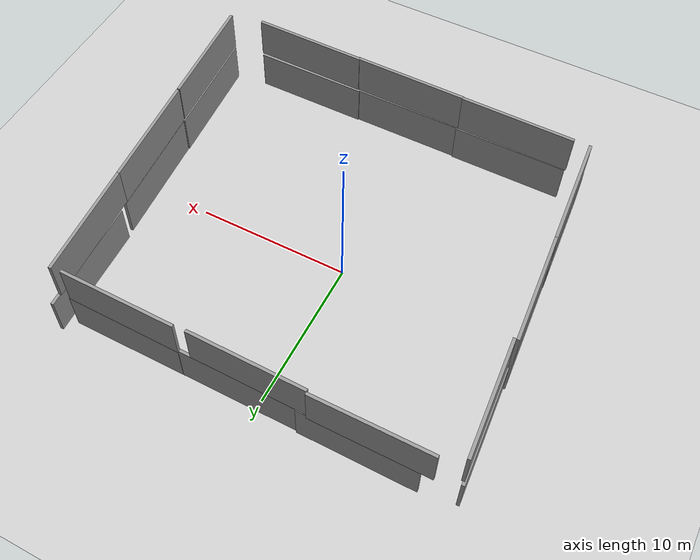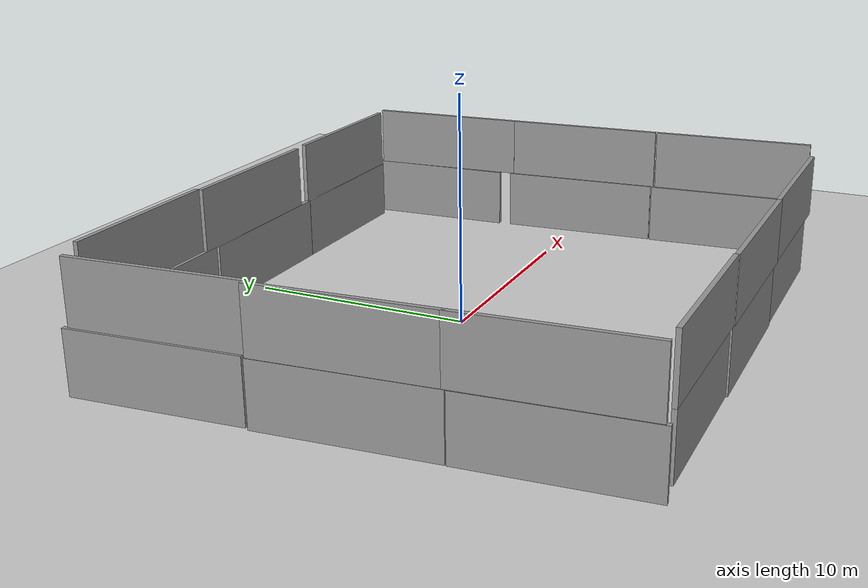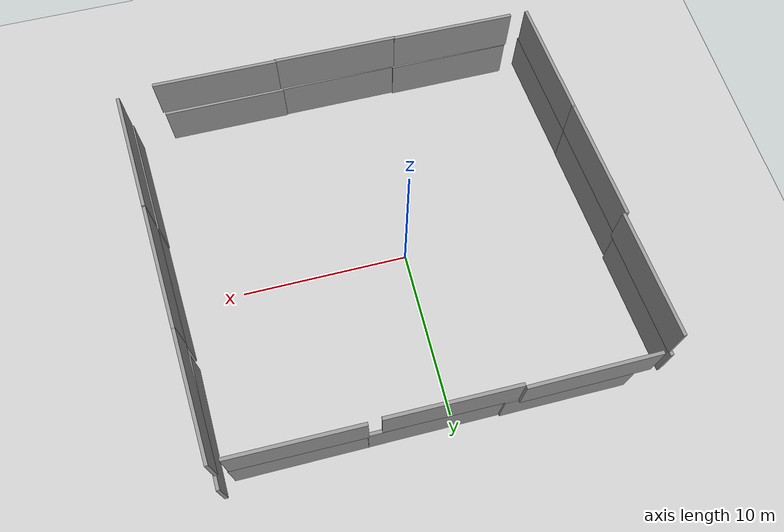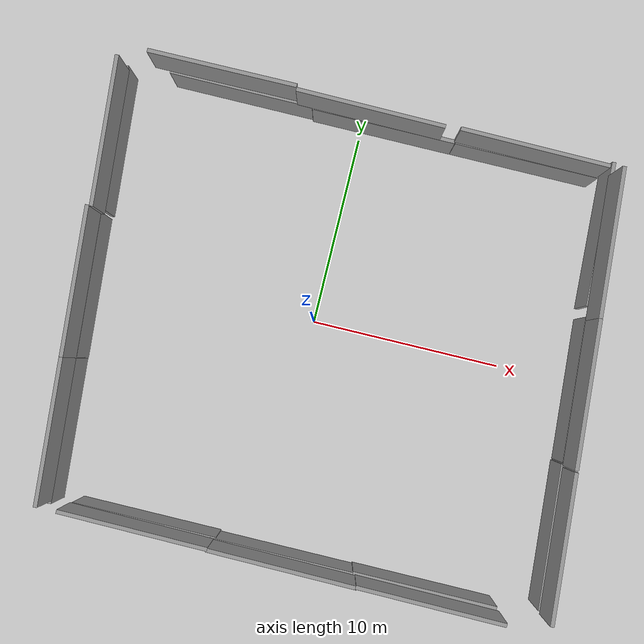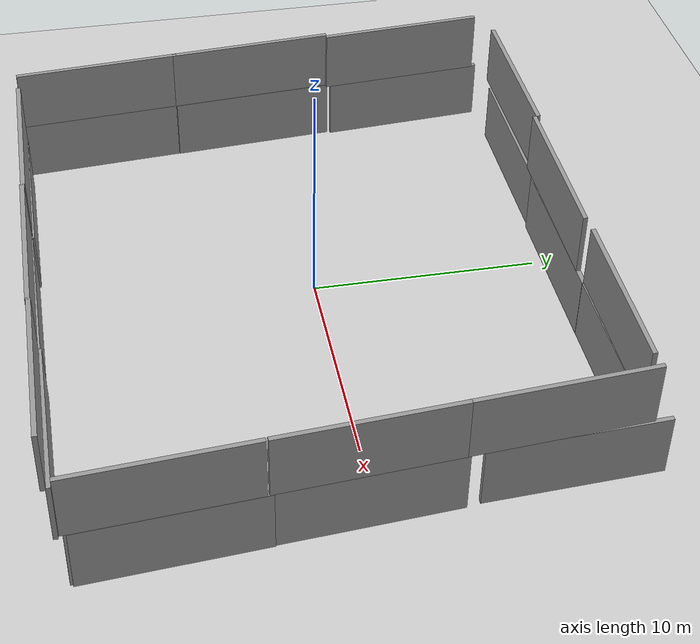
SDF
<sdf version="1.6">
 <world name="default">
  <model name="ground_plane">
   <static>1</static>
   <link name="link">
    <collision name="collision">
     <geometry><plane><normal>0 0 1</normal><size>100 100</size></plane></geometry>
     <surface>
      <contact><collide_bitmask>65535</collide_bitmask></contact>
      <friction><ode><mu>100</mu><mu2>50</mu2></ode></friction>
     </surface>
    </collision>
    <visual name="visual">
     <cast_shadows>0</cast_shadows>
     <geometry><plane><normal>0 0 1</normal><size>100 100</size></plane></geometry>
     <material>
      <script><uri>file://media/materials/scripts/gazebo.material</uri><name>Gazebo/Grey</name></script>
     </material>
    </visual>
   </link>
  </model>
  <light name="sun" type="directional">
   <pose>0 0 10 0 -0 0</pose>
   <diffuse>0.8 0.8 0.8 1</diffuse>
   <specular>0.2 0.2 0.2 1</specular>
   <attenuation>
    <range>1000</range>
    <constant>0.9</constant>
    <linear>0.01</linear>
    <quadratic>0.001</quadratic>
   </attenuation>
   <direction>-0.5 0.1 -0.9</direction>
  </light>
  <scene><shadows>0</shadows><ambient>0.4 0.4 0.4 1</ambient><background>0.7 0.7 0.7 1</background></scene>
  <physics name="default_physics" default="0" type="ode">
   <max_step_size>0.005</max_step_size>
   <real_time_factor>1</real_time_factor>
   <real_time_update_rate>600</real_time_update_rate>
   <ode>
    <solver>
     <type>quick</type>
     <iters>1000</iters>
     <sor>1.3</sor>
     <use_dynamic_moi_rescaling>0</use_dynamic_moi_rescaling>
    </solver>
    <constraints>
     <cfm>0</cfm>
     <erp>0.2</erp>
     <contact_max_correcting_vel>100</contact_max_correcting_vel>
     <contact_surface_layer>0.001</contact_surface_layer>
    </constraints>
   </ode>
  </physics>
  <plugin filename="librotors_gazebo_ros_interface_plugin.so" name="ros_interface_plugin"/>
  <model name="grey_wall">
   <static>1</static>
   <link name="link">
    <pose>0 0 1.4 0 -0 0</pose>
    <collision name="collision"><geometry><box><size>7.5 0.2 2.8</size></box></geometry></collision>
    <visual name="visual">
     <cast_shadows>0</cast_shadows>
     <geometry><box><size>7.5 0.2 2.8</size></box></geometry>
     <material>
      <script>
       <uri>model://grey_wall/materials/scripts</uri>
       <uri>model://grey_wall/materials/textures</uri>
       <name>vrc/grey_wall</name>
      </script>
     </material>
    </visual>
   </link>
   <pose>-6.41637 10.6388 0 0 -0 0</pose>
  </model>
  <model name="grey_wall_clone">
   <static>1</static>
   <link name="link">
    <pose>0 0 1.4 0 -0 0</pose>
    <collision name="collision"><geometry><box><size>7.5 0.2 2.8</size></box></geometry></collision>
    <visual name="visual">
     <cast_shadows>0</cast_shadows>
     <geometry><box><size>7.5 0.2 2.8</size></box></geometry>
     <material>
      <script>
       <uri>model://grey_wall/materials/scripts</uri>
       <uri>model://grey_wall/materials/textures</uri>
       <name>vrc/grey_wall</name>
      </script>
     </material>
    </visual>
   </link>
   <pose>1.1205 10.5487 0 0 -0 0</pose>
  </model>
  <model name="grey_wall_clone_0">
   <static>1</static>
   <link name="link">
    <pose>0 0 1.4 0 -0 0</pose>
    <collision name="collision"><geometry><box><size>7.5 0.2 2.8</size></box></geometry></collision>
    <visual name="visual">
     <cast_shadows>0</cast_shadows>
     <geometry><box><size>7.5 0.2 2.8</size></box></geometry>
     <material>
      <script>
       <uri>model://grey_wall/materials/scripts</uri>
       <uri>model://grey_wall/materials/textures</uri>
       <name>vrc/grey_wall</name>
      </script>
     </material>
    </visual>
   </link>
   <pose>8.64217 10.5536 0 0 -0 0</pose>
  </model>
  <model name="grey_wall_clone_1">
   <static>1</static>
   <link name="link">
    <pose>0 0 1.4 0 -0 0</pose>
    <collision name="collision"><geometry><box><size>7.5 0.2 2.8</size></box></geometry></collision>
    <visual name="visual">
     <cast_shadows>0</cast_shadows>
     <geometry><box><size>7.5 0.2 2.8</size></box></geometry>
     <material>
      <script>
       <uri>model://grey_wall/materials/scripts</uri>
       <uri>model://grey_wall/materials/textures</uri>
       <name>vrc/grey_wall</name>
      </script>
     </material>
    </visual>
   </link>
   <pose>8.70049 -12.0234 0 0 -0 0</pose>
  </model>
  <model name="grey_wall_clone_2">
   <static>1</static>
   <link name="link">
    <pose>0 0 1.4 0 -0 0</pose>
    <collision name="collision"><geometry><box><size>7.5 0.2 2.8</size></box></geometry></collision>
    <visual name="visual">
     <cast_shadows>0</cast_shadows>
     <geometry><box><size>7.5 0.2 2.8</size></box></geometry>
     <material>
      <script>
       <uri>model://grey_wall/materials/scripts</uri>
       <uri>model://grey_wall/materials/textures</uri>
       <name>vrc/grey_wall</name>
      </script>
     </material>
    </visual>
   </link>
   <pose>1.221 -12.0808 0 0 -0 0</pose>
  </model>
  <model name="grey_wall_clone_3">
   <static>1</static>
   <link name="link">
    <pose>0 0 1.4 0 -0 0</pose>
    <collision name="collision"><geometry><box><size>7.5 0.2 2.8</size></box></geometry></collision>
    <visual name="visual">
     <cast_shadows>0</cast_shadows>
     <geometry><box><size>7.5 0.2 2.8</size></box></geometry>
     <material>
      <script>
       <uri>model://grey_wall/materials/scripts</uri>
       <uri>model://grey_wall/materials/textures</uri>
       <name>vrc/grey_wall</name>
      </script>
     </material>
    </visual>
   </link>
   <pose>-5.9509 -12.0044 0 0 -0 0</pose>
  </model>
  <model name="grey_wall_clone_4">
   <static>1</static>
   <link name="link">
    <pose>0 0 1.4 0 -0 0</pose>
    <collision name="collision"><geometry><box><size>7.5 0.2 2.8</size></box></geometry></collision>
    <visual name="visual">
     <cast_shadows>0</cast_shadows>
     <geometry><box><size>7.5 0.2 2.8</size></box></geometry>
     <material>
      <script>
       <uri>model://grey_wall/materials/scripts</uri>
       <uri>model://grey_wall/materials/textures</uri>
       <name>vrc/grey_wall</name>
      </script>
     </material>
    </visual>
   </link>
   <pose>13.2215 7.71045 0 0 -0 1.62256</pose>
  </model>
  <model name="grey_wall_clone_4_clone">
   <static>1</static>
   <link name="link">
    <pose>0 0 1.4 0 -0 0</pose>
    <collision name="collision"><geometry><box><size>7.5 0.2 2.8</size></box></geometry></collision>
    <visual name="visual">
     <cast_shadows>0</cast_shadows>
     <geometry><box><size>7.5 0.2 2.8</size></box></geometry>
     <material>
      <script>
       <uri>model://grey_wall/materials/scripts</uri>
       <uri>model://grey_wall/materials/textures</uri>
       <name>vrc/grey_wall</name>
      </script>
     </material>
    </visual>
   </link>
   <pose>13.798 -0.335909 0 0 0 -1.49526</pose>
  </model>
  <model name="grey_wall_clone_4_clone_0">
   <static>1</static>
   <link name="link">
    <pose>0 0 1.4 0 -0 0</pose>
    <collision name="collision"><geometry><box><size>7.5 0.2 2.8</size></box></geometry></collision>
    <visual name="visual">
     <cast_shadows>0</cast_shadows>
     <geometry><box><size>7.5 0.2 2.8</size></box></geometry>
     <material>
      <script>
       <uri>model://grey_wall/materials/scripts</uri>
       <uri>model://grey_wall/materials/textures</uri>
       <name>vrc/grey_wall</name>
      </script>
     </material>
    </visual>
   </link>
   <pose>14.3235 -7.88666 0 0 0 -1.49526</pose>
  </model>
  <model name="grey_wall_clone_4_clone_1">
   <static>1</static>
   <link name="link">
    <pose>0 0 1.4 0 -0 0</pose>
    <collision name="collision"><geometry><box><size>7.5 0.2 2.8</size></box></geometry></collision>
    <visual name="visual">
     <cast_shadows>0</cast_shadows>
     <geometry><box><size>7.5 0.2 2.8</size></box></geometry>
     <material>
      <script>
       <uri>model://grey_wall/materials/scripts</uri>
       <uri>model://grey_wall/materials/textures</uri>
       <name>vrc/grey_wall</name>
      </script>
     </material>
    </visual>
   </link>
   <pose>-11.1089 -8.50745 0 0 0 -1.49526</pose>
  </model>
  <model name="grey_wall_clone_4_clone_2">
   <static>1</static>
   <link name="link">
    <pose>0 0 1.4 0 -0 0</pose>
    <collision name="collision"><geometry><box><size>7.5 0.2 2.8</size></box></geometry></collision>
    <visual name="visual">
     <cast_shadows>0</cast_shadows>
     <geometry><box><size>7.5 0.2 2.8</size></box></geometry>
     <material>
      <script>
       <uri>model://grey_wall/materials/scripts</uri>
       <uri>model://grey_wall/materials/textures</uri>
       <name>vrc/grey_wall</name>
      </script>
     </material>
    </visual>
   </link>
   <pose>-11.6574 -0.978401 0 0 0 -1.49526</pose>
  </model>
  <model name="grey_wall_clone_4_clone_3">
   <static>1</static>
   <link name="link">
    <pose>0 0 1.4 0 -0 0</pose>
    <collision name="collision"><geometry><box><size>7.5 0.2 2.8</size></box></geometry></collision>
    <visual name="visual">
     <cast_shadows>0</cast_shadows>
     <geometry><box><size>7.5 0.2 2.8</size></box></geometry>
     <material>
      <script>
       <uri>model://grey_wall/materials/scripts</uri>
       <uri>model://grey_wall/materials/textures</uri>
       <name>vrc/grey_wall</name>
      </script>
     </material>
    </visual>
   </link>
   <pose>-12.1253 6.65247 0 0 0 -1.49526</pose>
  </model>
  <model name="grey_wall_clone_4_clone_0_clone">
   <static>1</static>
   <link name="link">
    <pose>0 0 1.4 0 -0 0</pose>
    <collision name="collision"><geometry><box><size>7.5 0.2 2.8</size></box></geometry></collision>
    <visual name="visual">
     <cast_shadows>0</cast_shadows>
     <geometry><box><size>7.5 0.2 2.8</size></box></geometry>
     <material>
      <script>
       <uri>model://grey_wall/materials/scripts</uri>
       <uri>model://grey_wall/materials/textures</uri>
       <name>vrc/grey_wall</name>
      </script>
     </material>
    </visual>
   </link>
   <pose>13.2683 6.95915 2.81595 0 0 -1.49526</pose>
  </model>
  <model name="grey_wall_clone_4_clone_0_clone_0">
   <static>1</static>
   <link name="link">
    <pose>0 0 1.4 0 -0 0</pose>
    <collision name="collision"><geometry><box><size>7.5 0.2 2.8</size></box></geometry></collision>
    <visual name="visual">
     <cast_shadows>0</cast_shadows>
     <geometry><box><size>7.5 0.2 2.8</size></box></geometry>
     <material>
      <script>
       <uri>model://grey_wall/materials/scripts</uri>
       <uri>model://grey_wall/materials/textures</uri>
       <name>vrc/grey_wall</name>
      </script>
     </material>
    </visual>
   </link>
   <pose>-12.0238 6.4255 2.81595 0 0 -1.49526</pose>
  </model>
  <model name="grey_wall_clone_4_clone_0_clone_1">
   <static>1</static>
   <link name="link">
    <pose>0 0 1.4 0 -0 0</pose>
    <collision name="collision"><geometry><box><size>7.5 0.2 2.8</size></box></geometry></collision>
    <visual name="visual">
     <cast_shadows>0</cast_shadows>
     <geometry><box><size>7.5 0.2 2.8</size></box></geometry>
     <material>
      <script>
       <uri>model://grey_wall/materials/scripts</uri>
       <uri>model://grey_wall/materials/textures</uri>
       <name>vrc/grey_wall</name>
      </script>
     </material>
    </visual>
   </link>
   <pose>-11.6595 -1.02885 2.81595 0 0 -1.49526</pose>
  </model>
  <model name="grey_wall_clone_4_clone_0_clone_2">
   <static>1</static>
   <link name="link">
    <pose>0 0 1.4 0 -0 0</pose>
    <collision name="collision"><geometry><box><size>7.5 0.2 2.8</size></box></geometry></collision>
    <visual name="visual">
     <cast_shadows>0</cast_shadows>
     <geometry><box><size>7.5 0.2 2.8</size></box></geometry>
     <material>
      <script>
       <uri>model://grey_wall/materials/scripts</uri>
       <uri>model://grey_wall/materials/textures</uri>
       <name>vrc/grey_wall</name>
      </script>
     </material>
    </visual>
   </link>
   <pose>-11.1063 -8.34362 2.81595 0 0 -1.49526</pose>
  </model>
  <model name="grey_wall_clone_4_clone_0_clone_3">
   <static>1</static>
   <link name="link">
    <pose>0 0 1.4 0 -0 0</pose>
    <collision name="collision"><geometry><box><size>7.5 0.2 2.8</size></box></geometry></collision>
    <visual name="visual">
     <cast_shadows>0</cast_shadows>
     <geometry><box><size>7.5 0.2 2.8</size></box></geometry>
     <material>
      <script>
       <uri>model://grey_wall/materials/scripts</uri>
       <uri>model://grey_wall/materials/textures</uri>
       <name>vrc/grey_wall</name>
      </script>
     </material>
    </visual>
   </link>
   <pose>-7.18222 10.7517 2.81595 0 0 -3.13714</pose>
  </model>
  <model name="grey_wall_clone_4_clone_0_clone_3_clone">
   <static>1</static>
   <link name="link">
    <pose>0 0 1.4 0 -0 0</pose>
    <collision name="collision"><geometry><box><size>7.5 0.2 2.8</size></box></geometry></collision>
    <visual name="visual">
     <cast_shadows>0</cast_shadows>
     <geometry><box><size>7.5 0.2 2.8</size></box></geometry>
     <material>
      <script>
       <uri>model://grey_wall/materials/scripts</uri>
       <uri>model://grey_wall/materials/textures</uri>
       <name>vrc/grey_wall</name>
      </script>
     </material>
    </visual>
   </link>
   <pose>8.57202 10.5854 2.81595 0 -0 3.13381</pose>
  </model>
  <model name="grey_wall_clone_4_clone_0_clone_3_clone_0">
   <static>1</static>
   <link name="link">
    <pose>0 0 1.4 0 -0 0</pose>
    <collision name="collision"><geometry><box><size>7.5 0.2 2.8</size></box></geometry></collision>
    <visual name="visual">
     <cast_shadows>0</cast_shadows>
     <geometry><box><size>7.5 0.2 2.8</size></box></geometry>
     <material>
      <script>
       <uri>model://grey_wall/materials/scripts</uri>
       <uri>model://grey_wall/materials/textures</uri>
       <name>vrc/grey_wall</name>
      </script>
     </material>
    </visual>
   </link>
   <pose>0.330797 10.5656 2.81595 0 -0 3.13381</pose>
  </model>
  <model name="grey_wall_clone_4_clone_0_clone_3_clone_1">
   <static>1</static>
   <link name="link">
    <pose>0 0 1.4 0 -0 0</pose>
    <collision name="collision"><geometry><box><size>7.5 0.2 2.8</size></box></geometry></collision>
    <visual name="visual">
     <cast_shadows>0</cast_shadows>
     <geometry><box><size>7.5 0.2 2.8</size></box></geometry>
     <material>
      <script>
       <uri>model://grey_wall/materials/scripts</uri>
       <uri>model://grey_wall/materials/textures</uri>
       <name>vrc/grey_wall</name>
      </script>
     </material>
    </visual>
   </link>
   <pose>-6.04021 -12.0582 2.81595 0 -0 3.13381</pose>
  </model>
  <model name="grey_wall_clone_4_clone_0_clone_3_clone_2">
   <static>1</static>
   <link name="link">
    <pose>0 0 1.4 0 -0 0</pose>
    <collision name="collision"><geometry><box><size>7.5 0.2 2.8</size></box></geometry></collision>
    <visual name="visual">
     <cast_shadows>0</cast_shadows>
     <geometry><box><size>7.5 0.2 2.8</size></box></geometry>
     <material>
      <script>
       <uri>model://grey_wall/materials/scripts</uri>
       <uri>model://grey_wall/materials/textures</uri>
       <name>vrc/grey_wall</name>
      </script>
     </material>
    </visual>
   </link>
   <pose>1.41396 -12.152 2.81595 0 -0 3.13381</pose>
  </model>
  <model name="grey_wall_clone_4_clone_0_clone_3_clone_3">
   <static>1</static>
   <link name="link">
    <pose>0 0 1.4 0 -0 0</pose>
    <collision name="collision"><geometry><box><size>7.5 0.2 2.8</size></box></geometry></collision>
    <visual name="visual">
     <cast_shadows>0</cast_shadows>
     <geometry><box><size>7.5 0.2 2.8</size></box></geometry>
     <material>
      <script>
       <uri>model://grey_wall/materials/scripts</uri>
       <uri>model://grey_wall/materials/textures</uri>
       <name>vrc/grey_wall</name>
      </script>
     </material>
    </visual>
   </link>
   <pose>8.8245 -12.176 2.81595 0 -0 3.13381</pose>
  </model>
  <model name="grey_wall_clone_4_clone_clone">
   <static>1</static>
   <link name="link">
    <pose>0 0 1.4 0 -0 0</pose>
    <collision name="collision"><geometry><box><size>7.5 0.2 2.8</size></box></geometry></collision>
    <visual name="visual">
     <cast_shadows>0</cast_shadows>
     <geometry><box><size>7.5 0.2 2.8</size></box></geometry>
     <material>
      <script>
       <uri>model://grey_wall/materials/scripts</uri>
       <uri>model://grey_wall/materials/textures</uri>
       <name>vrc/grey_wall</name>
      </script>
     </material>
    </visual>
   </link>
   <pose>14.3999 -7.77343 0 0 0 -1.49526</pose>
  </model>
  <model name="grey_wall_clone_4_clone_0_clone_4">
   <static>1</static>
   <link name="link">
    <pose>0 0 1.4 0 -0 0</pose>
    <collision name="collision"><geometry><box><size>7.5 0.2 2.8</size></box></geometry></collision>
    <visual name="visual">
     <cast_shadows>0</cast_shadows>
     <geometry><box><size>7.5 0.2 2.8</size></box></geometry>
     <material>
      <script>
       <uri>model://grey_wall/materials/scripts</uri>
       <uri>model://grey_wall/materials/textures</uri>
       <name>vrc/grey_wall</name>
      </script>
     </material>
    </visual>
   </link>
   <pose>14.4129 -8.02445 2.81595 0 0 -1.49526</pose>
  </model>
  <gravity>0 0 -9.8</gravity>
  <magnetic_field>6e-06 2.3e-05 -4.2e-05</magnetic_field>
  <atmosphere type="adiabatic"/>
  <audio><device>default</device></audio>
  <spherical_coordinates>
   <surface_model>EARTH_WGS84</surface_model>
   <latitude_deg>0</latitude_deg>
   <longitude_deg>0</longitude_deg>
   <elevation>0</elevation>
   <heading_deg>0</heading_deg>
  </spherical_coordinates>
  <model name="grey_wall_clone_4_clone_0_clone_clone">
   <static>1</static>
   <link name="link">
    <pose>0 0 1.4 0 -0 0</pose>
    <collision name="collision"><geometry><box><size>7.5 0.2 2.8</size></box></geometry></collision>
    <visual name="visual">
     <cast_shadows>0</cast_shadows>
     <geometry><box><size>7.5 0.2 2.8</size></box></geometry>
     <material>
      <script>
       <uri>model://grey_wall/materials/scripts</uri>
       <uri>model://grey_wall/materials/textures</uri>
       <name>vrc/grey_wall</name>
      </script>
     </material>
    </visual>
   </link>
   <pose>13.8357 -0.472487 2.81595 0 0 -1.49526</pose>
  </model>
 </world>
</sdf>
